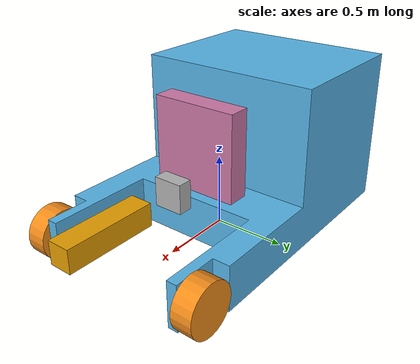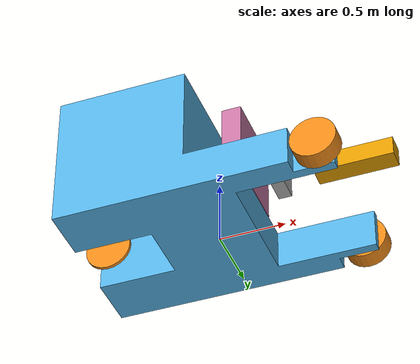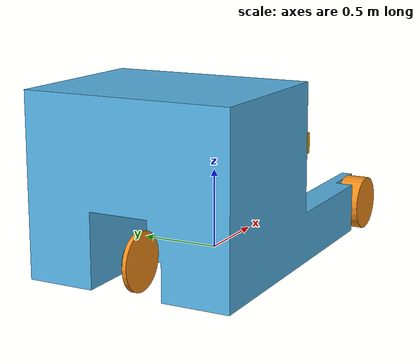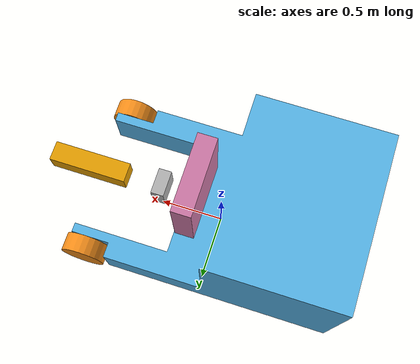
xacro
<?xml version="1.0"?>
<robot xmlns:xacro="http://www.ros.org/wiki/xacro" name="forklift_chassis">

 <!-- Add the parameters file -->
 <xacro:include filename="$(find forklift_description)/urdf/chassis/parameters.urdf.xacro"/>

  <!-- Inertia of a solid cuboid. Width is measured along the x axis, depth
       along the y axis, and height along the z axis. -->
  <xacro:macro name="solid_cuboid_inertial"
               params="width depth height mass *origin">
    <inertial>
      <mass value="${mass}"/>
      <xacro:insert_block name="origin" />
      <inertia ixx="${mass * (depth * depth + height * height) / 12}"
               ixy="0" ixz="0"
               iyy="${mass * (width * width + height * height) / 12}"
               iyz="0"
               izz="${mass * (width * width + depth * depth) / 12}"/>
    </inertial>
  </xacro:macro>

  <xacro:macro name="thick_walled_tube_inertial"
               params="inner_rad outer_rad height mass *origin">
    <inertial>
      <xacro:insert_block name="origin" />
      <mass value="${mass}"/>
      <inertia ixx="${(1 / 12) * mass * (3 * (inner_rad * inner_rad +
                    outer_rad * outer_rad) + height * height)}"
               ixy="0" ixz="0"
               iyy="${(1 / 12) * mass * (3 * (inner_rad * inner_rad +
                    outer_rad * outer_rad) + height * height)}"
               iyz="0"
               izz="${mass * (inner_rad * inner_rad +
                    outer_rad * outer_rad) / 2}"/>
    </inertial>
  </xacro:macro>

  <!-- Used for fixing robot to Gazebo 'base_link' -->

  <!-- base_link must have geometry so that its axes can be displayed in
       rviz. -->
  <link name="base_link">
    <visual>
      <origin xyz="0 0 0" rpy="0 0 0"/>
      <geometry>
        <box size="0.01 0.01 0.01"/>
      </geometry>
      <material name="chassis_mat"/>
    </visual>
  </link>
  <gazebo reference="base_link">
    <material>Gazebo/Grey</material>
  </gazebo>

  <!-- chassis-->
    <link name="chassis">
      <visual>
        <origin xyz="0 0 0" rpy="0 0 0"/>
        <geometry>
          <mesh filename="package://forklift_description/meshes/forklift_base.dae" />
          <scale>1 1 1</scale>
        </geometry>
        <material name="tire_mat"/>
      </visual>

      <xacro:solid_cuboid_inertial
          width="${chassis_L}" depth="${chassis_W}"
          height="${chassis_H}" mass="${chassis_M}">
          <origin xyz="0 0 ${chassis_H/2}" rpy="0 0 0"/>
      </xacro:solid_cuboid_inertial>
    </link>

  <joint name="base_link_to_chassis" type="fixed">
    <parent link="base_link"/>
    <child link="chassis"/>
  </joint>

 <xacro:include filename="$(find forklift_description)/urdf/chassis/forklift_front_axle.urdf.xacro"/>

 <xacro:include filename="$(find forklift_description)/urdf/chassis/forklift_rear_axle.urdf.xacro"/>

 <xacro:include filename="$(find forklift_description)/urdf/chassis/carriage_assembly.urdf.xacro"/>

 <!-- VLP-16 LIDAR -->

 <!-- Camera -->

 <!-- GPS -->

 <!-- IMU -->

 <!-- IMU -->

 <!-- Ground Truth -->

<!-- gazebo_ros_control plugin -->
  <gazebo>
    <plugin name="gazebo_ros_test_control" filename="libgazebo_ros_forklift_control.so"/>

      <plugin name="joint_state_publisher_rear" filename="libgazebo_ros_joint_state_publisher.so">
        <jointName>rear_axle, left_front_axle, right_front_axle, steering_joint, elevator_joint</jointName>
        <updateRate>100</updateRate>

      </plugin>

  </gazebo>

</robot>

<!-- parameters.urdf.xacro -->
<robot xmlns:xacro="http://www.ros.org/wiki/xacro" name="parameters">

  <!-- Degree-to-radian conversions -->
    <xacro:property name="degrees_45" value="0.785398163"/>
    <xacro:property name="degrees_90" value="1.57079633"/>
    <xacro:property name="tube_R" value="0.05"/>
    <xacro:property name="thick_wall" value="0.01"/>

  <!-- Chassis main inertial body -->
    <xacro:property name="chassis_L" value="2.080"/>
    <xacro:property name="chassis_W" value="1.270"/>
    <xacro:property name="chassis_H" value="0.305"/>
    <xacro:property name="chassis_M" value="3920"/>

  <!-- Front and Rear Axles -->
    <!-- distance from rear axle to front axle -->
    <!-- radius of front axle -->
    <xacro:property name="front_axle_W" value="1.184"/>
    <xacro:property name="front_axle_X_offset" value="0.930"/>
    <xacro:property name="front_axle_Z_offset" value="0.150"/>

    <xacro:property name="rear_axle_X_offset" value="-0.880"/>
    <xacro:property name="rear_axle_Z_offset" value="0.154"/>

    <!-- radius of rear axle -->

    <xacro:property name="axle_eff_limit" value="1000"/>
    <!-- 16 km/hr limit, 25.4 rad/s -->
    <xacro:property name="axle_vel_limit" value="30"/>

  <!-- Wheel Travel -->

  <!-- Wheels -->
    <xacro:property name="wheel_front_R" value="0.171"/>
    <xacro:property name="wheel_front_H" value="0.140"/>
    <xacro:property name="wheel_front_M" value="0.2"/>

    <xacro:property name="wheel_rear_R" value="0.175"/>
    <xacro:property name="wheel_rear_H" value="0.025"/>
    <xacro:property name="wheel_rear_M" value="20"/>

    <xacro:property name="shock_eff_limit" value="100"/>
    <xacro:property name="shock_vel_limit" value="1000"/>

  <!-- Steering -->
    <xacro:property name="steer_link_R" value="0.10"/>
    <xacro:property name="steer_link_H" value="0.05"/>
    <xacro:property name="steer_link_Y_offset" value="${steer_link_H/2 + wheel_rear_H/2}"/>
    <!--Caster wheel stability -->
    <xacro:property name="steer_link_X_offset" value="-0.05"/>
    <xacro:property name="steer_link_M" value="5"/>
    <!-- These constants are used to simulate a Traxxas 2056 servo operated at
         6 V. servo_stall_torque is measured in N m. servo_no_load_speed is
         measured in rad/s. -->
    <xacro:property name="steer_stall_torque" value="500"/>
    <xacro:property name="steer_no_load_speed" value="4.553"/>

  <!--Elevator-->
    <xacro:property name="elevator_L" value="0.15"/>
    <xacro:property name="elevator_W" value="0.60"/>
    <xacro:property name="elevator_H" value="0.60"/>
    <xacro:property name="elevator_M" value="50"/>

    <xacro:property name="elevator_X_offset" value="0.2"/>
    <xacro:property name="elevator_Z_offset" value="${elevator_H/2 + chassis_H + 0.05}"/>

<!--Rail-->
  <xacro:property name="rail_L" value="0.10"/>
  <xacro:property name="rail_W" value="0.20"/>
  <xacro:property name="rail_H" value="0.20"/>
  <xacro:property name="rail_M" value="50"/>

  <xacro:property name="rail_X_offset" value="${elevator_L/2 + 0.2}"/>
  <xacro:property name="rail_Z_offset" value="${-elevator_H/2 + swivel_H/2}"/>

  <!--Swivel-->
  <xacro:property name="swivel_L" value="0.60"/>
  <xacro:property name="swivel_W" value="0.15"/>
  <xacro:property name="swivel_H" value="0.15"/>
  <xacro:property name="swivel_M" value="50"/>

  <xacro:property name="swivel_X_offset" value="${elevator_L/2 + 0.2}"/>
  <xacro:property name="swivel_Z_offset" value="0"/>

</robot>

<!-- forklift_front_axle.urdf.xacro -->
<robot xmlns:xacro="http://www.ros.org/wiki/xacro" name="front_axle_assembly">

    <!-- wheel_front_left -->
      <link name="left_front_wheel">
        <visual>
          <origin xyz="0 0 0" rpy="${degrees_90} 0 0"/>
          <geometry>
            <cylinder radius="${wheel_front_R}" length="${wheel_front_H}"/>
          </geometry>
          <material name="tire_mat"/>
        </visual>

        <collision>
          <origin xyz="0 0 0" rpy="${degrees_90} 0 0"/>
          <geometry>
            <cylinder radius="${wheel_front_R}" length="${wheel_front_H}"/>
          </geometry>
        </collision>

        <xacro:thick_walled_tube_inertial
            inner_rad="${wheel_front_R - thick_wall}" outer_rad="${wheel_front_R}"
            height="${wheel_front_H}" mass="${wheel_front_M}">
        <origin xyz="0 0 0" rpy="${degrees_90} 0 0"/>
        </xacro:thick_walled_tube_inertial>
      </link>

    <!-- JOINT wheel_front_left TO chassis -->
      <joint name="left_front_axle" type="continuous">
        <parent link="chassis"/>
        <child link="left_front_wheel"/>
        <origin xyz="${front_axle_X_offset} ${front_axle_W/2} ${front_axle_Z_offset}"/>
        <axis xyz="0 1 0"/>
        <dynamics damping="0.0" friction="0.0"/>
        <limit effort="${axle_eff_limit}" velocity="${axle_vel_limit}"/>
      </joint>

      <transmission name="left_front_axle_trans">
        <type>transmission_interface/SimpleTransmission</type>
        <joint name="left_front_axle">
          <hardwareInterface>hardware_interface/EffortJointInterface</hardwareInterface>
        </joint>
        <actuator name="left_front_axle_act">
          <!-- This hardwareInterface element exists for compatibility
               with ROS Hydro. -->
          <hardwareInterface>EffortJointInterface</hardwareInterface>
          <mechanicalReduction>1</mechanicalReduction>
        </actuator>
      </transmission>

    <!-- wheel_front_right -->
      <link name="right_front_wheel">
        <visual>
          <origin xyz="0 0 0" rpy="${degrees_90} 0 0"/>
          <geometry>
            <cylinder radius="${wheel_front_R}" length="${wheel_front_H}"/>
          </geometry>
          <material name="tire_mat"/>
        </visual>

        <collision>
          <origin xyz="0 0 0" rpy="${degrees_90} 0 0"/>
          <geometry>
            <cylinder radius="${wheel_front_R}" length="${wheel_front_H}"/>
          </geometry>
        </collision>

        <xacro:thick_walled_tube_inertial
            inner_rad="${wheel_front_R - thick_wall}" outer_rad="${wheel_front_R}"
            height="${wheel_front_H}" mass="${wheel_front_M}">
        <origin xyz="0 0 0" rpy="${degrees_90} 0 0"/>
        </xacro:thick_walled_tube_inertial>
      </link>

    <!-- JOINT wheel_front_right TO chassis -->
      <joint name="right_front_axle" type="continuous">
        <parent link="chassis"/>
        <child link="right_front_wheel"/>
        <origin xyz="${front_axle_X_offset} ${-front_axle_W/2} ${front_axle_Z_offset}"/>
        <axis xyz="0 1 0"/>
        <dynamics damping="0.0" friction="0.0"/>
        <limit effort="${axle_eff_limit}" velocity="${axle_vel_limit}"/>
      </joint>

      <transmission name="right_front_axle_trans">
        <type>transmission_interface/SimpleTransmission</type>
        <joint name="right_front_axle">
          <hardwareInterface>hardware_interface/EffortJointInterface</hardwareInterface>
        </joint>
        <actuator name="right_front_axle_act">
          <!-- This hardwareInterface element exists for compatibility
               with ROS Hydro. -->
          <hardwareInterface>EffortJointInterface</hardwareInterface>
          <mechanicalReduction>1</mechanicalReduction>
        </actuator>
      </transmission>

      <gazebo reference="right_front_wheel">
          <material>Gazebo/Orange</material>
  	      <mu1>1</mu1>
          <mu2>1</mu2>
      		<kp>10000000</kp>
      		<kd>1</kd>
      		<minDepth>0.001</minDepth>
      		<maxVel>10.0</maxVel>
      </gazebo>

      <gazebo reference="left_front_wheel">
          <material>Gazebo/Orange</material>
  	      <mu1>1</mu1>
          <mu2>1</mu2>
      		<kp>10000000</kp>
      		<kd>1</kd>
      		<minDepth>0.001</minDepth>
      		<maxVel>10.0</maxVel>
      </gazebo>

</robot>

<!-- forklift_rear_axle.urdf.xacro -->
<robot xmlns:xacro="http://www.ros.org/wiki/xacro" name="rear_axle_assembly">

  <!-- steer_link -->
    <link name="steer_link">
      <visual>
        <origin xyz="0 ${steer_link_Y_offset} 0" rpy="${degrees_90} 0 0"/>
        <geometry>
          <cylinder radius="${steer_link_R}" length="${steer_link_H}"/>
        </geometry>
        <material name="tire_mat"/>
      </visual>

      <xacro:thick_walled_tube_inertial
          inner_rad="${steer_link_R - thick_wall}" outer_rad="${steer_link_R}"
          height="${steer_link_H}" mass="${steer_link_M}">
      <origin xyz="0 0 0" rpy="0 0 0"/>
      </xacro:thick_walled_tube_inertial>
    </link>

  <!-- JOINT steer_link TO chassis -->
    <joint name="steering_joint" type="revolute">
      <parent link="chassis"/>
      <child link="steer_link"/>
      <origin xyz="${rear_axle_X_offset} 0 ${rear_axle_Z_offset}"/>
      <axis xyz="0 0 1"/>
      <limit lower="${-degrees_45}" upper="${degrees_45}"
             effort="${steer_stall_torque}" velocity="${steer_no_load_speed}"/>
      <dynamics damping="0.0" friction="0.0"/>
    </joint>

    <transmission name="steering_trans">
      <type>transmission_interface/SimpleTransmission</type>
      <joint name="steering_joint">
        <hardwareInterface>hardware_interface/EffortJointInterface</hardwareInterface>
      </joint>
      <actuator name="steering_act">
        <!-- This hardwareInterface element exists for compatibility
             with ROS Hydro. -->
        <hardwareInterface>EffortJointInterface</hardwareInterface>
        <mechanicalReduction>1</mechanicalReduction>
      </actuator>
    </transmission>

  <!-- wheel_front_left -->
    <link name="rear_wheel">
      <visual>
        <origin xyz="0 0 0" rpy="${degrees_90} 0 0"/>
        <geometry>
          <cylinder radius="${wheel_rear_R}" length="${wheel_rear_H}"/>
        </geometry>
        <material name="tire_mat"/>
      </visual>

      <collision>
        <origin xyz="0 0 0" rpy="${degrees_90} 0 0"/>
        <geometry>
          <cylinder radius="${wheel_rear_R}" length="${wheel_rear_H}"/>
        </geometry>
      </collision>

      <xacro:thick_walled_tube_inertial
          inner_rad="${wheel_rear_R - thick_wall}" outer_rad="${wheel_rear_R}"
          height="${wheel_rear_H}" mass="${wheel_rear_M}">
      <origin xyz="0 0 0" rpy="${degrees_90} 0 0"/>
      </xacro:thick_walled_tube_inertial>
    </link>

  <!-- JOINT wheel_front_left TO steer_link_front_left -->
    <joint name="rear_axle" type="continuous">
      <parent link="steer_link"/>
      <child link="rear_wheel"/>
      <origin xyz="0 0 0 "/>
      <axis xyz="0 1 0"/>
      <limit effort="${axle_eff_limit}" velocity="${axle_vel_limit}"/>
    </joint>

    <transmission name="rear_axle_trans">
      <type>transmission_interface/SimpleTransmission</type>
      <joint name="rear_axle">
        <hardwareInterface>hardware_interface/EffortJointInterface</hardwareInterface>
      </joint>
      <actuator name="rear_axle_act">
        <!-- This hardwareInterface element exists for compatibility
             with ROS Hydro. -->
        <hardwareInterface>EffortJointInterface</hardwareInterface>
        <mechanicalReduction>1</mechanicalReduction>
      </actuator>
    </transmission>

    <gazebo reference="rear_wheel">
        <material>Gazebo/Orange</material>
	      <mu1>0.5</mu1>
        <mu2>0.5</mu2>
        <kp>1e8</kp>
    		<kd>1</kd>
    		<minDepth>0.001</minDepth>
    		<maxVel>10.0</maxVel>
    </gazebo>

</robot>

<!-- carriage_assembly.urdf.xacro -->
<robot xmlns:xacro="http://www.ros.org/wiki/xacro" name="carriage_assembly">

  <!--Elevator-->
  <link name="elevator_link">
    <visual>
      <origin xyz="0 0 0" rpy="0 0 0"/>
      <geometry>
        <box size="${elevator_L} ${elevator_W} ${elevator_H}"/>
        <scale>1 1 1</scale>
      </geometry>
      <material name="tire_mat"/>
    </visual>

    <collision>
      <origin xyz="0 0 0" rpy="0 0 0"/>
      <geometry>
        <box size="${elevator_L} ${elevator_W} ${elevator_H}"/>
      </geometry>
    </collision>

    <xacro:solid_cuboid_inertial
        width="${elevator_L}" depth="${elevator_W}"
        height="${elevator_H}" mass="${elevator_M}">
        <origin xyz="0 0 0" rpy="0 0 0"/>
    </xacro:solid_cuboid_inertial>
  </link>

  <!--Elevator TO chassis joint-->
    <joint name="elevator_joint" type="prismatic">
      <parent link="chassis"/>
      <child link="elevator_link"/>
      <origin xyz="${elevator_X_offset} 0 ${elevator_Z_offset}"/>
      <axis xyz="0 0 1"/>
      <limit lower="0" upper="1000"
             effort="1000" velocity="1000"/>
    </joint>

    <transmission name="elevator_trans">
      <type>transmission_interface/SimpleTransmission</type>
      <joint name="elevator_joint">
        <hardwareInterface>hardware_interface/EffortJointInterface</hardwareInterface>
      </joint>
      <actuator name="elevator_act">
        <!-- This hardwareInterface element exists for compatibility
             with ROS Hydro. -->
        <hardwareInterface>EffortJointInterface</hardwareInterface>
        <mechanicalReduction>1</mechanicalReduction>
      </actuator>
    </transmission>

  <!--Rail-->
    <link name="rail_link">
      <visual>
        <origin xyz="0 0 0" rpy="0 0 0"/>
        <geometry>
          <box size="${rail_L} ${rail_W} ${rail_H}"/>
          <scale>1 1 1</scale>
        </geometry>
        <material name="tire_mat"/>
      </visual>

      <collision>
        <origin xyz="0 0 0" rpy="0 0 0"/>
        <geometry>
          <box size="${rail_L} ${rail_W} ${rail_H}"/>
        </geometry>
      </collision>

      <xacro:solid_cuboid_inertial
          width="${rail_L}" depth="${rail_W}"
          height="${rail_H}" mass="${rail_M}">
          <origin xyz="0 0 0" rpy="0 0 0"/>
      </xacro:solid_cuboid_inertial>
    </link>

    <!--Rail TO Elevator joint-->
      <joint name="rail_joint" type="prismatic">
        <parent link="elevator_link"/>
        <child link="rail_link"/>
        <origin xyz="${rail_X_offset} 0 ${rail_Z_offset}"/>
        <axis xyz="0 1 0"/>
        <limit lower="-1" upper="1"
               effort="1000" velocity="1000"/>
      </joint>

      <transmission name="rail_trans">
        <type>transmission_interface/SimpleTransmission</type>
        <joint name="rail_joint">
          <hardwareInterface>hardware_interface/EffortJointInterface</hardwareInterface>
        </joint>
        <actuator name="rail_act">
          <!-- This hardwareInterface element exists for compatibility
               with ROS Hydro. -->
          <hardwareInterface>EffortJointInterface</hardwareInterface>
          <mechanicalReduction>1</mechanicalReduction>
        </actuator>
      </transmission>

<!--Swivel-->
<link name="swivel_link">
  <visual>
    <origin xyz="${swivel_L/2} 0 0" rpy="0 0 0"/>
    <geometry>
      <box size="${swivel_L} ${swivel_W} ${swivel_H}"/>
      <scale>1 1 1</scale>
    </geometry>
    <material name="tire_mat"/>
  </visual>

  <collision>
    <origin xyz="${swivel_L/2} 0 0" rpy="0 0 0"/>
    <geometry>
      <box size="${swivel_L} ${swivel_W} ${swivel_H}"/>
    </geometry>
  </collision>

  <xacro:solid_cuboid_inertial
      width="${swivel_L}" depth="${swivel_W}"
      height="${swivel_H}" mass="${swivel_M}">
      <origin xyz="${swivel_L/2} 0 0" rpy="0 0 0"/>
  </xacro:solid_cuboid_inertial>
</link>

<!--Swivel TO Rail joint-->
  <joint name="swivel_joint" type="revolute">
    <parent link="rail_link"/>
    <child link="swivel_link"/>
    <origin xyz="${swivel_X_offset} 0 ${swivel_Z_offset}"/>
    <axis xyz="0 0 1"/>
    <limit lower="${-degrees_90}" upper="${degrees_90}"
           effort="1000" velocity="1000"/>
  </joint>

  <transmission name="swivel_trans">
    <type>transmission_interface/SimpleTransmission</type>
    <joint name="swivel_joint">
      <hardwareInterface>hardware_interface/EffortJointInterface</hardwareInterface>
    </joint>
    <actuator name="swivel_act">
      <!-- This hardwareInterface element exists for compatibility
           with ROS Hydro. -->
      <hardwareInterface>EffortJointInterface</hardwareInterface>
      <mechanicalReduction>1</mechanicalReduction>
    </actuator>
  </transmission>
</robot>
